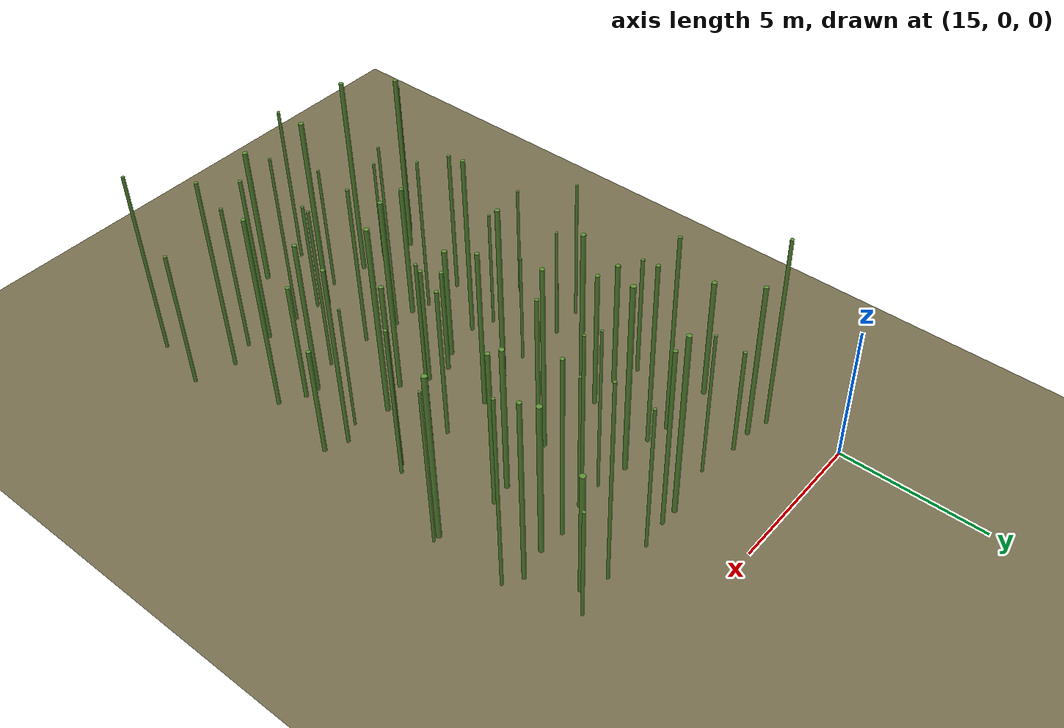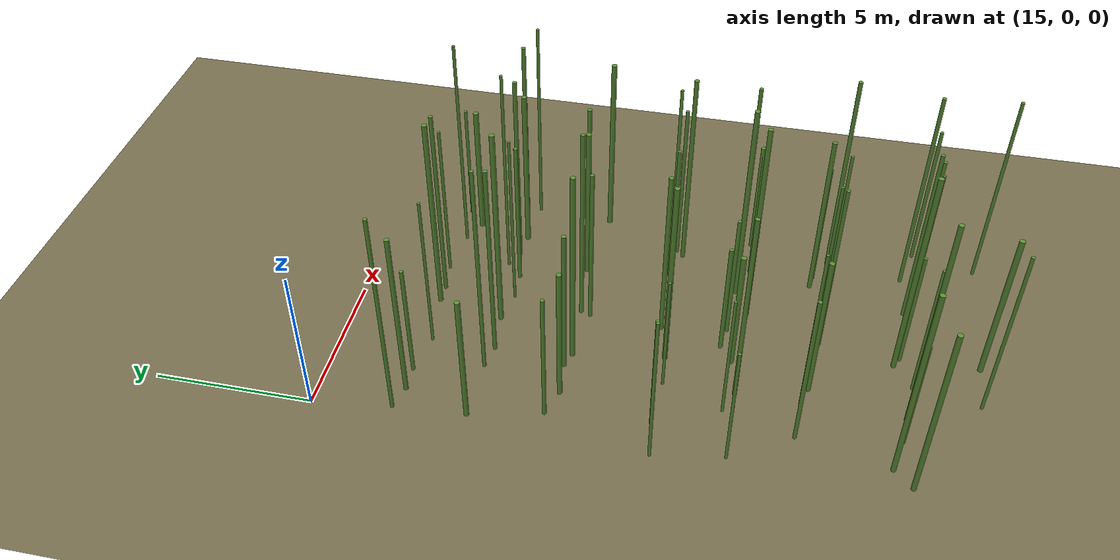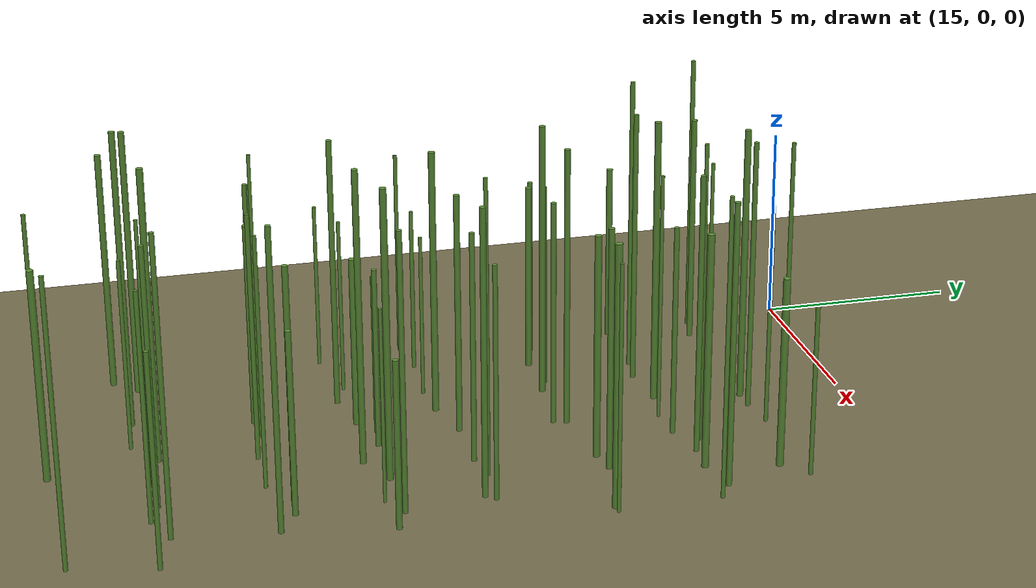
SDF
<sdf version="1.9">
 <world name="bamboo_field">
  <model name="ground_plane">
   <static>true</static>
   <link name="link">
    <collision name="collision">
     <geometry><plane><normal>0 0 1</normal><size>80.0 80.0</size></plane></geometry>
    </collision>
    <visual name="visual">
     <geometry><plane><normal>0 0 1</normal><size>80.0 80.0</size></plane></geometry>
     <material><diffuse>0.45 0.42 0.30 1</diffuse></material>
    </visual>
   </link>
  </model>
  <model name="bamboo_526">
   <static>true</static>
   <pose>18.860159477782666 -19.832655943592947 3.0462922151851615 0 0 0</pose>
   <link name="link">
    <collision name="collision">
     <geometry>
      <cylinder><radius>0.053149695780686596</radius><length>6.092584430370323</length></cylinder>
     </geometry>
    </collision>
    <visual name="visual">
     <geometry>
      <cylinder><radius>0.053149695780686596</radius><length>6.092584430370323</length></cylinder>
     </geometry>
     <material><diffuse>0.35 0.55 0.20 1</diffuse><specular>0.1 0.1 0.1 1</specular></material>
    </visual>
   </link>
  </model>
  <model name="bamboo_527">
   <static>true</static>
   <pose>20.437587209882793 -19.854918476039686 2.661207232393403 0 0 0</pose>
   <link name="link">
    <collision name="collision">
     <geometry>
      <cylinder><radius>0.08665621723259387</radius><length>5.322414464786806</length></cylinder>
     </geometry>
    </collision>
    <visual name="visual">
     <geometry>
      <cylinder><radius>0.08665621723259387</radius><length>5.322414464786806</length></cylinder>
     </geometry>
     <material><diffuse>0.35 0.55 0.20 1</diffuse><specular>0.1 0.1 0.1 1</specular></material>
    </visual>
   </link>
  </model>
  <model name="bamboo_530">
   <static>true</static>
   <pose>24.94281143981483 -19.79431886537646 3.4770803915843524 0 0 0</pose>
   <link name="link">
    <collision name="collision">
     <geometry>
      <cylinder><radius>0.05563535534813821</radius><length>6.954160783168705</length></cylinder>
     </geometry>
    </collision>
    <visual name="visual">
     <geometry>
      <cylinder><radius>0.05563535534813821</radius><length>6.954160783168705</length></cylinder>
     </geometry>
     <material><diffuse>0.35 0.55 0.20 1</diffuse><specular>0.1 0.1 0.1 1</specular></material>
    </visual>
   </link>
  </model>
  <model name="bamboo_585">
   <static>true</static>
   <pose>15.387754911077337 -17.80817874945378 3.091448937281645 0 0 0</pose>
   <link name="link">
    <collision name="collision">
     <geometry>
      <cylinder><radius>0.07987423064167329</radius><length>6.18289787456329</length></cylinder>
     </geometry>
    </collision>
    <visual name="visual">
     <geometry>
      <cylinder><radius>0.07987423064167329</radius><length>6.18289787456329</length></cylinder>
     </geometry>
     <material><diffuse>0.35 0.55 0.20 1</diffuse><specular>0.1 0.1 0.1 1</specular></material>
    </visual>
   </link>
  </model>
  <model name="bamboo_586">
   <static>true</static>
   <pose>15.947767904153284 -17.24440605320336 3.4586491532316894 0 0 0</pose>
   <link name="link">
    <collision name="collision">
     <geometry>
      <cylinder><radius>0.07975085611162297</radius><length>6.917298306463379</length></cylinder>
     </geometry>
    </collision>
    <visual name="visual">
     <geometry>
      <cylinder><radius>0.07975085611162297</radius><length>6.917298306463379</length></cylinder>
     </geometry>
     <material><diffuse>0.35 0.55 0.20 1</diffuse><specular>0.1 0.1 0.1 1</specular></material>
    </visual>
   </link>
  </model>
  <model name="bamboo_587">
   <static>true</static>
   <pose>17.0256446400461 -17.533025191686598 2.0100596781480102 0 0 0</pose>
   <link name="link">
    <collision name="collision">
     <geometry>
      <cylinder><radius>0.04616175794667495</radius><length>4.0201193562960205</length></cylinder>
     </geometry>
    </collision>
    <visual name="visual">
     <geometry>
      <cylinder><radius>0.04616175794667495</radius><length>4.0201193562960205</length></cylinder>
     </geometry>
     <material><diffuse>0.35 0.55 0.20 1</diffuse><specular>0.1 0.1 0.1 1</specular></material>
    </visual>
   </link>
  </model>
  <model name="bamboo_588">
   <static>true</static>
   <pose>17.927474129414367 -17.620173478456348 3.807092751949092 0 0 0</pose>
   <link name="link">
    <collision name="collision">
     <geometry>
      <cylinder><radius>0.07741482933663968</radius><length>7.614185503898184</length></cylinder>
     </geometry>
    </collision>
    <visual name="visual">
     <geometry>
      <cylinder><radius>0.07741482933663968</radius><length>7.614185503898184</length></cylinder>
     </geometry>
     <material><diffuse>0.35 0.55 0.20 1</diffuse><specular>0.1 0.1 0.1 1</specular></material>
    </visual>
   </link>
  </model>
  <model name="bamboo_589">
   <static>true</static>
   <pose>19.229474432751996 -17.773003274932293 2.441575938714816 0 0 0</pose>
   <link name="link">
    <collision name="collision">
     <geometry>
      <cylinder><radius>0.04804771787821975</radius><length>4.883151877429632</length></cylinder>
     </geometry>
    </collision>
    <visual name="visual">
     <geometry>
      <cylinder><radius>0.04804771787821975</radius><length>4.883151877429632</length></cylinder>
     </geometry>
     <material><diffuse>0.35 0.55 0.20 1</diffuse><specular>0.1 0.1 0.1 1</specular></material>
    </visual>
   </link>
  </model>
  <model name="bamboo_590">
   <static>true</static>
   <pose>20.070352675636016 -17.213012490376915 3.7027754448509484 0 0 0</pose>
   <link name="link">
    <collision name="collision">
     <geometry>
      <cylinder><radius>0.08261255638837378</radius><length>7.405550889701897</length></cylinder>
     </geometry>
    </collision>
    <visual name="visual">
     <geometry>
      <cylinder><radius>0.08261255638837378</radius><length>7.405550889701897</length></cylinder>
     </geometry>
     <material><diffuse>0.35 0.55 0.20 1</diffuse><specular>0.1 0.1 0.1 1</specular></material>
    </visual>
   </link>
  </model>
  <model name="bamboo_591">
   <static>true</static>
   <pose>20.37094153229591 -17.40111914554082 2.1347255148096025 0 0 0</pose>
   <link name="link">
    <collision name="collision">
     <geometry>
      <cylinder><radius>0.054532633376004266</radius><length>4.269451029619205</length></cylinder>
     </geometry>
    </collision>
    <visual name="visual">
     <geometry>
      <cylinder><radius>0.054532633376004266</radius><length>4.269451029619205</length></cylinder>
     </geometry>
     <material><diffuse>0.35 0.55 0.20 1</diffuse><specular>0.1 0.1 0.1 1</specular></material>
    </visual>
   </link>
  </model>
  <model name="bamboo_592">
   <static>true</static>
   <pose>21.267107555475945 -17.475370581666688 3.310945961393905 0 0 0</pose>
   <link name="link">
    <collision name="collision">
     <geometry>
      <cylinder><radius>0.046410757329797575</radius><length>6.62189192278781</length></cylinder>
     </geometry>
    </collision>
    <visual name="visual">
     <geometry>
      <cylinder><radius>0.046410757329797575</radius><length>6.62189192278781</length></cylinder>
     </geometry>
     <material><diffuse>0.35 0.55 0.20 1</diffuse><specular>0.1 0.1 0.1 1</specular></material>
    </visual>
   </link>
  </model>
  <model name="bamboo_593">
   <static>true</static>
   <pose>22.47109629430502 -17.50011267268308 3.2326848605189062 0 0 0</pose>
   <link name="link">
    <collision name="collision">
     <geometry>
      <cylinder><radius>0.06253229891074674</radius><length>6.4653697210378125</length></cylinder>
     </geometry>
    </collision>
    <visual name="visual">
     <geometry>
      <cylinder><radius>0.06253229891074674</radius><length>6.4653697210378125</length></cylinder>
     </geometry>
     <material><diffuse>0.35 0.55 0.20 1</diffuse><specular>0.1 0.1 0.1 1</specular></material>
    </visual>
   </link>
  </model>
  <model name="bamboo_594">
   <static>true</static>
   <pose>23.186726572747627 -17.736709028692882 2.856614785919182 0 0 0</pose>
   <link name="link">
    <collision name="collision">
     <geometry>
      <cylinder><radius>0.055816657974816455</radius><length>5.713229571838364</length></cylinder>
     </geometry>
    </collision>
    <visual name="visual">
     <geometry>
      <cylinder><radius>0.055816657974816455</radius><length>5.713229571838364</length></cylinder>
     </geometry>
     <material><diffuse>0.35 0.55 0.20 1</diffuse><specular>0.1 0.1 0.1 1</specular></material>
    </visual>
   </link>
  </model>
  <model name="bamboo_595">
   <static>true</static>
   <pose>24.06596861923299 -17.39595066864873 3.6802201175613103 0 0 0</pose>
   <link name="link">
    <collision name="collision">
     <geometry>
      <cylinder><radius>0.06180620330448442</radius><length>7.360440235122621</length></cylinder>
     </geometry>
    </collision>
    <visual name="visual">
     <geometry>
      <cylinder><radius>0.06180620330448442</radius><length>7.360440235122621</length></cylinder>
     </geometry>
     <material><diffuse>0.35 0.55 0.20 1</diffuse><specular>0.1 0.1 0.1 1</specular></material>
    </visual>
   </link>
  </model>
  <model name="bamboo_596">
   <static>true</static>
   <pose>25.40927914668029 -17.78599251304806 2.6109435928906706 0 0 0</pose>
   <link name="link">
    <collision name="collision">
     <geometry>
      <cylinder><radius>0.057937080105679835</radius><length>5.221887185781341</length></cylinder>
     </geometry>
    </collision>
    <visual name="visual">
     <geometry>
      <cylinder><radius>0.057937080105679835</radius><length>5.221887185781341</length></cylinder>
     </geometry>
     <material><diffuse>0.35 0.55 0.20 1</diffuse><specular>0.1 0.1 0.1 1</specular></material>
    </visual>
   </link>
  </model>
  <model name="bamboo_654">
   <static>true</static>
   <pose>16.57686163514403 -14.397149602017205 2.7617667644629362 0 0 0</pose>
   <link name="link">
    <collision name="collision">
     <geometry>
      <cylinder><radius>0.06161093758654174</radius><length>5.5235335289258725</length></cylinder>
     </geometry>
    </collision>
    <visual name="visual">
     <geometry>
      <cylinder><radius>0.06161093758654174</radius><length>5.5235335289258725</length></cylinder>
     </geometry>
     <material><diffuse>0.35 0.55 0.20 1</diffuse><specular>0.1 0.1 0.1 1</specular></material>
    </visual>
   </link>
  </model>
  <model name="bamboo_655">
   <static>true</static>
   <pose>17.931483482523667 -14.473980205762212 2.999195652223701 0 0 0</pose>
   <link name="link">
    <collision name="collision">
     <geometry>
      <cylinder><radius>0.048830363832980644</radius><length>5.998391304447402</length></cylinder>
     </geometry>
    </collision>
    <visual name="visual">
     <geometry>
      <cylinder><radius>0.048830363832980644</radius><length>5.998391304447402</length></cylinder>
     </geometry>
     <material><diffuse>0.35 0.55 0.20 1</diffuse><specular>0.1 0.1 0.1 1</specular></material>
    </visual>
   </link>
  </model>
  <model name="bamboo_656">
   <static>true</static>
   <pose>18.534889949732346 -14.671068983096156 2.6000683643068974 0 0 0</pose>
   <link name="link">
    <collision name="collision">
     <geometry>
      <cylinder><radius>0.07926664683469392</radius><length>5.200136728613795</length></cylinder>
     </geometry>
    </collision>
    <visual name="visual">
     <geometry>
      <cylinder><radius>0.07926664683469392</radius><length>5.200136728613795</length></cylinder>
     </geometry>
     <material><diffuse>0.35 0.55 0.20 1</diffuse><specular>0.1 0.1 0.1 1</specular></material>
    </visual>
   </link>
  </model>
  <model name="bamboo_657">
   <static>true</static>
   <pose>19.334331391073974 -14.627649597886366 3.627636138413693 0 0 0</pose>
   <link name="link">
    <collision name="collision">
     <geometry>
      <cylinder><radius>0.04300181888620083</radius><length>7.255272276827386</length></cylinder>
     </geometry>
    </collision>
    <visual name="visual">
     <geometry>
      <cylinder><radius>0.04300181888620083</radius><length>7.255272276827386</length></cylinder>
     </geometry>
     <material><diffuse>0.35 0.55 0.20 1</diffuse><specular>0.1 0.1 0.1 1</specular></material>
    </visual>
   </link>
  </model>
  <model name="bamboo_658">
   <static>true</static>
   <pose>20.532986924697433 -14.888152768723181 3.120700069628529 0 0 0</pose>
   <link name="link">
    <collision name="collision">
     <geometry>
      <cylinder><radius>0.058048101052756075</radius><length>6.241400139257058</length></cylinder>
     </geometry>
    </collision>
    <visual name="visual">
     <geometry>
      <cylinder><radius>0.058048101052756075</radius><length>6.241400139257058</length></cylinder>
     </geometry>
     <material><diffuse>0.35 0.55 0.20 1</diffuse><specular>0.1 0.1 0.1 1</specular></material>
    </visual>
   </link>
  </model>
  <model name="bamboo_659">
   <static>true</static>
   <pose>22.08996895501786 -14.946375961529252 3.1517889149466973 0 0 0</pose>
   <link name="link">
    <collision name="collision">
     <geometry>
      <cylinder><radius>0.04994790553184366</radius><length>6.303577829893395</length></cylinder>
     </geometry>
    </collision>
    <visual name="visual">
     <geometry>
      <cylinder><radius>0.04994790553184366</radius><length>6.303577829893395</length></cylinder>
     </geometry>
     <material><diffuse>0.35 0.55 0.20 1</diffuse><specular>0.1 0.1 0.1 1</specular></material>
    </visual>
   </link>
  </model>
  <model name="bamboo_660">
   <static>true</static>
   <pose>23.16326924326136 -14.44581043214312 2.9749874886087233 0 0 0</pose>
   <link name="link">
    <collision name="collision">
     <geometry>
      <cylinder><radius>0.0736596420073675</radius><length>5.949974977217447</length></cylinder>
     </geometry>
    </collision>
    <visual name="visual">
     <geometry>
      <cylinder><radius>0.0736596420073675</radius><length>5.949974977217447</length></cylinder>
     </geometry>
     <material><diffuse>0.35 0.55 0.20 1</diffuse><specular>0.1 0.1 0.1 1</specular></material>
    </visual>
   </link>
  </model>
  <model name="bamboo_661">
   <static>true</static>
   <pose>23.617432202129365 -14.503151145769925 2.289696676556135 0 0 0</pose>
   <link name="link">
    <collision name="collision">
     <geometry>
      <cylinder><radius>0.07158560952417345</radius><length>4.57939335311227</length></cylinder>
     </geometry>
    </collision>
    <visual name="visual">
     <geometry>
      <cylinder><radius>0.07158560952417345</radius><length>4.57939335311227</length></cylinder>
     </geometry>
     <material><diffuse>0.35 0.55 0.20 1</diffuse><specular>0.1 0.1 0.1 1</specular></material>
    </visual>
   </link>
  </model>
  <model name="bamboo_662">
   <static>true</static>
   <pose>24.385025506016152 -14.955153504276984 3.6978015438776173 0 0 0</pose>
   <link name="link">
    <collision name="collision">
     <geometry>
      <cylinder><radius>0.06858187869368967</radius><length>7.395603087755235</length></cylinder>
     </geometry>
    </collision>
    <visual name="visual">
     <geometry>
      <cylinder><radius>0.06858187869368967</radius><length>7.395603087755235</length></cylinder>
     </geometry>
     <material><diffuse>0.35 0.55 0.20 1</diffuse><specular>0.1 0.1 0.1 1</specular></material>
    </visual>
   </link>
  </model>
  <model name="bamboo_719">
   <static>true</static>
   <pose>15.415099893849032 -12.508472718244585 2.165090225277165 0 0 0</pose>
   <link name="link">
    <collision name="collision">
     <geometry>
      <cylinder><radius>0.046609452268543905</radius><length>4.33018045055433</length></cylinder>
     </geometry>
    </collision>
    <visual name="visual">
     <geometry>
      <cylinder><radius>0.046609452268543905</radius><length>4.33018045055433</length></cylinder>
     </geometry>
     <material><diffuse>0.35 0.55 0.20 1</diffuse><specular>0.1 0.1 0.1 1</specular></material>
    </visual>
   </link>
  </model>
  <model name="bamboo_720">
   <static>true</static>
   <pose>17.167004570672166 -12.201487717030615 2.26974152745191 0 0 0</pose>
   <link name="link">
    <collision name="collision">
     <geometry>
      <cylinder><radius>0.046518758744758706</radius><length>4.53948305490382</length></cylinder>
     </geometry>
    </collision>
    <visual name="visual">
     <geometry>
      <cylinder><radius>0.046518758744758706</radius><length>4.53948305490382</length></cylinder>
     </geometry>
     <material><diffuse>0.35 0.55 0.20 1</diffuse><specular>0.1 0.1 0.1 1</specular></material>
    </visual>
   </link>
  </model>
  <model name="bamboo_721">
   <static>true</static>
   <pose>17.908768710499334 -12.492839700654887 3.471335508290645 0 0 0</pose>
   <link name="link">
    <collision name="collision">
     <geometry>
      <cylinder><radius>0.07079984187971008</radius><length>6.94267101658129</length></cylinder>
     </geometry>
    </collision>
    <visual name="visual">
     <geometry>
      <cylinder><radius>0.07079984187971008</radius><length>6.94267101658129</length></cylinder>
     </geometry>
     <material><diffuse>0.35 0.55 0.20 1</diffuse><specular>0.1 0.1 0.1 1</specular></material>
    </visual>
   </link>
  </model>
  <model name="bamboo_722">
   <static>true</static>
   <pose>19.217328669075844 -12.246512065237699 2.1791892962534707 0 0 0</pose>
   <link name="link">
    <collision name="collision">
     <geometry>
      <cylinder><radius>0.08620690404475415</radius><length>4.358378592506941</length></cylinder>
     </geometry>
    </collision>
    <visual name="visual">
     <geometry>
      <cylinder><radius>0.08620690404475415</radius><length>4.358378592506941</length></cylinder>
     </geometry>
     <material><diffuse>0.35 0.55 0.20 1</diffuse><specular>0.1 0.1 0.1 1</specular></material>
    </visual>
   </link>
  </model>
  <model name="bamboo_723">
   <static>true</static>
   <pose>19.799801717682115 -11.851634145019037 2.048413660670538 0 0 0</pose>
   <link name="link">
    <collision name="collision">
     <geometry>
      <cylinder><radius>0.06969385745205352</radius><length>4.096827321341076</length></cylinder>
     </geometry>
    </collision>
    <visual name="visual">
     <geometry>
      <cylinder><radius>0.06969385745205352</radius><length>4.096827321341076</length></cylinder>
     </geometry>
     <material><diffuse>0.35 0.55 0.20 1</diffuse><specular>0.1 0.1 0.1 1</specular></material>
    </visual>
   </link>
  </model>
  <model name="bamboo_724">
   <static>true</static>
   <pose>20.564331207833405 -11.970270142801377 2.291636950380555 0 0 0</pose>
   <link name="link">
    <collision name="collision">
     <geometry>
      <cylinder><radius>0.06211050526171258</radius><length>4.58327390076111</length></cylinder>
     </geometry>
    </collision>
    <visual name="visual">
     <geometry>
      <cylinder><radius>0.06211050526171258</radius><length>4.58327390076111</length></cylinder>
     </geometry>
     <material><diffuse>0.35 0.55 0.20 1</diffuse><specular>0.1 0.1 0.1 1</specular></material>
    </visual>
   </link>
  </model>
  <model name="bamboo_725">
   <static>true</static>
   <pose>21.39145122617332 -12.50481387754042 3.7055282903584006 0 0 0</pose>
   <link name="link">
    <collision name="collision">
     <geometry>
      <cylinder><radius>0.0778866891296531</radius><length>7.411056580716801</length></cylinder>
     </geometry>
    </collision>
    <visual name="visual">
     <geometry>
      <cylinder><radius>0.0778866891296531</radius><length>7.411056580716801</length></cylinder>
     </geometry>
     <material><diffuse>0.35 0.55 0.20 1</diffuse><specular>0.1 0.1 0.1 1</specular></material>
    </visual>
   </link>
  </model>
  <model name="bamboo_726">
   <static>true</static>
   <pose>22.40198067851946 -12.057333829354365 3.6402679128599926 0 0 0</pose>
   <link name="link">
    <collision name="collision">
     <geometry>
      <cylinder><radius>0.08343761758224842</radius><length>7.280535825719985</length></cylinder>
     </geometry>
    </collision>
    <visual name="visual">
     <geometry>
      <cylinder><radius>0.08343761758224842</radius><length>7.280535825719985</length></cylinder>
     </geometry>
     <material><diffuse>0.35 0.55 0.20 1</diffuse><specular>0.1 0.1 0.1 1</specular></material>
    </visual>
   </link>
  </model>
  <model name="bamboo_727">
   <static>true</static>
   <pose>23.51348239109554 -12.400329539880024 2.4180190822484042 0 0 0</pose>
   <link name="link">
    <collision name="collision">
     <geometry>
      <cylinder><radius>0.0411374057575601</radius><length>4.8360381644968085</length></cylinder>
     </geometry>
    </collision>
    <visual name="visual">
     <geometry>
      <cylinder><radius>0.0411374057575601</radius><length>4.8360381644968085</length></cylinder>
     </geometry>
     <material><diffuse>0.35 0.55 0.20 1</diffuse><specular>0.1 0.1 0.1 1</specular></material>
    </visual>
   </link>
  </model>
  <model name="bamboo_728">
   <static>true</static>
   <pose>24.14512811779402 -12.05386182448787 3.4598471670195776 0 0 0</pose>
   <link name="link">
    <collision name="collision">
     <geometry>
      <cylinder><radius>0.06415131651723459</radius><length>6.919694334039155</length></cylinder>
     </geometry>
    </collision>
    <visual name="visual">
     <geometry>
      <cylinder><radius>0.06415131651723459</radius><length>6.919694334039155</length></cylinder>
     </geometry>
     <material><diffuse>0.35 0.55 0.20 1</diffuse><specular>0.1 0.1 0.1 1</specular></material>
    </visual>
   </link>
  </model>
  <model name="bamboo_729">
   <static>true</static>
   <pose>24.872764081101117 -12.344181008160053 2.0869640149989177 0 0 0</pose>
   <link name="link">
    <collision name="collision">
     <geometry>
      <cylinder><radius>0.07317641709998216</radius><length>4.173928029997835</length></cylinder>
     </geometry>
    </collision>
    <visual name="visual">
     <geometry>
      <cylinder><radius>0.07317641709998216</radius><length>4.173928029997835</length></cylinder>
     </geometry>
     <material><diffuse>0.35 0.55 0.20 1</diffuse><specular>0.1 0.1 0.1 1</specular></material>
    </visual>
   </link>
  </model>
  <model name="bamboo_793">
   <static>true</static>
   <pose>15.059046965163295 -10.317700652262252 2.7006362758482343 0 0 0</pose>
   <link name="link">
    <collision name="collision">
     <geometry>
      <cylinder><radius>0.05032886897866752</radius><length>5.401272551696469</length></cylinder>
     </geometry>
    </collision>
    <visual name="visual">
     <geometry>
      <cylinder><radius>0.05032886897866752</radius><length>5.401272551696469</length></cylinder>
     </geometry>
     <material><diffuse>0.35 0.55 0.20 1</diffuse><specular>0.1 0.1 0.1 1</specular></material>
    </visual>
   </link>
  </model>
  <model name="bamboo_794">
   <static>true</static>
   <pose>16.247133023783174 -10.179673207645477 2.1424857424404853 0 0 0</pose>
   <link name="link">
    <collision name="collision">
     <geometry>
      <cylinder><radius>0.05224125369313172</radius><length>4.284971484880971</length></cylinder>
     </geometry>
    </collision>
    <visual name="visual">
     <geometry>
      <cylinder><radius>0.05224125369313172</radius><length>4.284971484880971</length></cylinder>
     </geometry>
     <material><diffuse>0.35 0.55 0.20 1</diffuse><specular>0.1 0.1 0.1 1</specular></material>
    </visual>
   </link>
  </model>
  <model name="bamboo_795">
   <static>true</static>
   <pose>17.882128313908925 -10.29150233714117 2.107599751444453 0 0 0</pose>
   <link name="link">
    <collision name="collision">
     <geometry>
      <cylinder><radius>0.045296345943063365</radius><length>4.215199502888906</length></cylinder>
     </geometry>
    </collision>
    <visual name="visual">
     <geometry>
      <cylinder><radius>0.045296345943063365</radius><length>4.215199502888906</length></cylinder>
     </geometry>
     <material><diffuse>0.35 0.55 0.20 1</diffuse><specular>0.1 0.1 0.1 1</specular></material>
    </visual>
   </link>
  </model>
  <model name="bamboo_796">
   <static>true</static>
   <pose>18.95347157365406 -10.198081976610569 3.398730999914352 0 0 0</pose>
   <link name="link">
    <collision name="collision">
     <geometry>
      <cylinder><radius>0.08180872019012454</radius><length>6.797461999828704</length></cylinder>
     </geometry>
    </collision>
    <visual name="visual">
     <geometry>
      <cylinder><radius>0.08180872019012454</radius><length>6.797461999828704</length></cylinder>
     </geometry>
     <material><diffuse>0.35 0.55 0.20 1</diffuse><specular>0.1 0.1 0.1 1</specular></material>
    </visual>
   </link>
  </model>
  <model name="bamboo_797">
   <static>true</static>
   <pose>20.2306049511187 -9.887770377516391 3.0669698577902555 0 0 0</pose>
   <link name="link">
    <collision name="collision">
     <geometry>
      <cylinder><radius>0.0735435132716968</radius><length>6.133939715580511</length></cylinder>
     </geometry>
    </collision>
    <visual name="visual">
     <geometry>
      <cylinder><radius>0.0735435132716968</radius><length>6.133939715580511</length></cylinder>
     </geometry>
     <material><diffuse>0.35 0.55 0.20 1</diffuse><specular>0.1 0.1 0.1 1</specular></material>
    </visual>
   </link>
  </model>
  <model name="bamboo_798">
   <static>true</static>
   <pose>21.93958076356279 -9.919639300961096 2.9111683414934824 0 0 0</pose>
   <link name="link">
    <collision name="collision">
     <geometry>
      <cylinder><radius>0.06341379526900612</radius><length>5.822336682986965</length></cylinder>
     </geometry>
    </collision>
    <visual name="visual">
     <geometry>
      <cylinder><radius>0.06341379526900612</radius><length>5.822336682986965</length></cylinder>
     </geometry>
     <material><diffuse>0.35 0.55 0.20 1</diffuse><specular>0.1 0.1 0.1 1</specular></material>
    </visual>
   </link>
  </model>
  <model name="bamboo_799">
   <static>true</static>
   <pose>22.778464267966637 -9.777787304942589 3.7221925541117917 0 0 0</pose>
   <link name="link">
    <collision name="collision">
     <geometry>
      <cylinder><radius>0.05118972269584301</radius><length>7.4443851082235835</length></cylinder>
     </geometry>
    </collision>
    <visual name="visual">
     <geometry>
      <cylinder><radius>0.05118972269584301</radius><length>7.4443851082235835</length></cylinder>
     </geometry>
     <material><diffuse>0.35 0.55 0.20 1</diffuse><specular>0.1 0.1 0.1 1</specular></material>
    </visual>
   </link>
  </model>
  <model name="bamboo_800">
   <static>true</static>
   <pose>23.821118297395873 -10.09949228502659 3.577557412695759 0 0 0</pose>
   <link name="link">
    <collision name="collision">
     <geometry>
      <cylinder><radius>0.07325903092709479</radius><length>7.155114825391518</length></cylinder>
     </geometry>
    </collision>
    <visual name="visual">
     <geometry>
      <cylinder><radius>0.07325903092709479</radius><length>7.155114825391518</length></cylinder>
     </geometry>
     <material><diffuse>0.35 0.55 0.20 1</diffuse><specular>0.1 0.1 0.1 1</specular></material>
    </visual>
   </link>
  </model>
  <model name="bamboo_801">
   <static>true</static>
   <pose>24.035102308482646 -9.879231372080902 2.922483367409799 0 0 0</pose>
   <link name="link">
    <collision name="collision">
     <geometry>
      <cylinder><radius>0.057572041034196345</radius><length>5.844966734819598</length></cylinder>
     </geometry>
    </collision>
    <visual name="visual">
     <geometry>
      <cylinder><radius>0.057572041034196345</radius><length>5.844966734819598</length></cylinder>
     </geometry>
     <material><diffuse>0.35 0.55 0.20 1</diffuse><specular>0.1 0.1 0.1 1</specular></material>
    </visual>
   </link>
  </model>
  <model name="bamboo_861">
   <static>true</static>
   <pose>15.984595429699597 -7.002292352258125 2.341378775765779 0 0 0</pose>
   <link name="link">
    <collision name="collision">
     <geometry>
      <cylinder><radius>0.06280922964633476</radius><length>4.682757551531558</length></cylinder>
     </geometry>
    </collision>
    <visual name="visual">
     <geometry>
      <cylinder><radius>0.06280922964633476</radius><length>4.682757551531558</length></cylinder>
     </geometry>
     <material><diffuse>0.35 0.55 0.20 1</diffuse><specular>0.1 0.1 0.1 1</specular></material>
    </visual>
   </link>
  </model>
  <model name="bamboo_862">
   <static>true</static>
   <pose>16.876515638949083 -7.276404451936113 2.441145048485847 0 0 0</pose>
   <link name="link">
    <collision name="collision">
     <geometry>
      <cylinder><radius>0.07995876111672391</radius><length>4.882290096971694</length></cylinder>
     </geometry>
    </collision>
    <visual name="visual">
     <geometry>
      <cylinder><radius>0.07995876111672391</radius><length>4.882290096971694</length></cylinder>
     </geometry>
     <material><diffuse>0.35 0.55 0.20 1</diffuse><specular>0.1 0.1 0.1 1</specular></material>
    </visual>
   </link>
  </model>
  <model name="bamboo_863">
   <static>true</static>
   <pose>18.021103867795958 -7.171575569376134 2.6484698820233707 0 0 0</pose>
   <link name="link">
    <collision name="collision">
     <geometry>
      <cylinder><radius>0.07391989186480963</radius><length>5.2969397640467415</length></cylinder>
     </geometry>
    </collision>
    <visual name="visual">
     <geometry>
      <cylinder><radius>0.07391989186480963</radius><length>5.2969397640467415</length></cylinder>
     </geometry>
     <material><diffuse>0.35 0.55 0.20 1</diffuse><specular>0.1 0.1 0.1 1</specular></material>
    </visual>
   </link>
  </model>
  <model name="bamboo_864">
   <static>true</static>
   <pose>18.50809801711718 -7.339899867324792 3.5284557647345443 0 0 0</pose>
   <link name="link">
    <collision name="collision">
     <geometry>
      <cylinder><radius>0.0796550834973275</radius><length>7.0569115294690885</length></cylinder>
     </geometry>
    </collision>
    <visual name="visual">
     <geometry>
      <cylinder><radius>0.0796550834973275</radius><length>7.0569115294690885</length></cylinder>
     </geometry>
     <material><diffuse>0.35 0.55 0.20 1</diffuse><specular>0.1 0.1 0.1 1</specular></material>
    </visual>
   </link>
  </model>
  <model name="bamboo_865">
   <static>true</static>
   <pose>20.355271136921104 -7.546263250639519 2.8773224241084545 0 0 0</pose>
   <link name="link">
    <collision name="collision">
     <geometry>
      <cylinder><radius>0.06767038649507094</radius><length>5.754644848216909</length></cylinder>
     </geometry>
    </collision>
    <visual name="visual">
     <geometry>
      <cylinder><radius>0.06767038649507094</radius><length>5.754644848216909</length></cylinder>
     </geometry>
     <material><diffuse>0.35 0.55 0.20 1</diffuse><specular>0.1 0.1 0.1 1</specular></material>
    </visual>
   </link>
  </model>
  <model name="bamboo_866">
   <static>true</static>
   <pose>20.4582266341619 -7.233875244316343 3.555323275294209 0 0 0</pose>
   <link name="link">
    <collision name="collision">
     <geometry>
      <cylinder><radius>0.07062207526569479</radius><length>7.110646550588418</length></cylinder>
     </geometry>
    </collision>
    <visual name="visual">
     <geometry>
      <cylinder><radius>0.07062207526569479</radius><length>7.110646550588418</length></cylinder>
     </geometry>
     <material><diffuse>0.35 0.55 0.20 1</diffuse><specular>0.1 0.1 0.1 1</specular></material>
    </visual>
   </link>
  </model>
  <model name="bamboo_867">
   <static>true</static>
   <pose>22.45066999547715 -7.033958580724013 2.832444484435074 0 0 0</pose>
   <link name="link">
    <collision name="collision">
     <geometry>
      <cylinder><radius>0.08434575709839595</radius><length>5.664888968870148</length></cylinder>
     </geometry>
    </collision>
    <visual name="visual">
     <geometry>
      <cylinder><radius>0.08434575709839595</radius><length>5.664888968870148</length></cylinder>
     </geometry>
     <material><diffuse>0.35 0.55 0.20 1</diffuse><specular>0.1 0.1 0.1 1</specular></material>
    </visual>
   </link>
  </model>
  <model name="bamboo_868">
   <static>true</static>
   <pose>23.150846992689218 -6.918089749380247 3.046173728263663 0 0 0</pose>
   <link name="link">
    <collision name="collision">
     <geometry>
      <cylinder><radius>0.07199128518661474</radius><length>6.092347456527326</length></cylinder>
     </geometry>
    </collision>
    <visual name="visual">
     <geometry>
      <cylinder><radius>0.07199128518661474</radius><length>6.092347456527326</length></cylinder>
     </geometry>
     <material><diffuse>0.35 0.55 0.20 1</diffuse><specular>0.1 0.1 0.1 1</specular></material>
    </visual>
   </link>
  </model>
  <model name="bamboo_869">
   <static>true</static>
   <pose>25.126448569009384 -7.331254979900571 3.2543833080900253 0 0 0</pose>
   <link name="link">
    <collision name="collision">
     <geometry>
      <cylinder><radius>0.08751490320564105</radius><length>6.508766616180051</length></cylinder>
     </geometry>
    </collision>
    <visual name="visual">
     <geometry>
      <cylinder><radius>0.08751490320564105</radius><length>6.508766616180051</length></cylinder>
     </geometry>
     <material><diffuse>0.35 0.55 0.20 1</diffuse><specular>0.1 0.1 0.1 1</specular></material>
    </visual>
   </link>
  </model>
  <model name="bamboo_870">
   <static>true</static>
   <pose>25.347447162768095 -7.321421563477656 3.060398041856162 0 0 0</pose>
   <link name="link">
    <collision name="collision">
     <geometry>
      <cylinder><radius>0.0458753911355896</radius><length>6.120796083712324</length></cylinder>
     </geometry>
    </collision>
    <visual name="visual">
     <geometry>
      <cylinder><radius>0.0458753911355896</radius><length>6.120796083712324</length></cylinder>
     </geometry>
     <material><diffuse>0.35 0.55 0.20 1</diffuse><specular>0.1 0.1 0.1 1</specular></material>
    </visual>
   </link>
  </model>
  <model name="bamboo_926">
   <static>true</static>
   <pose>15.462833128342238 -4.728926747270662 2.3256944653638376 0 0 0</pose>
   <link name="link">
    <collision name="collision">
     <geometry>
      <cylinder><radius>0.0822640034033124</radius><length>4.651388930727675</length></cylinder>
     </geometry>
    </collision>
    <visual name="visual">
     <geometry>
      <cylinder><radius>0.0822640034033124</radius><length>4.651388930727675</length></cylinder>
     </geometry>
     <material><diffuse>0.35 0.55 0.20 1</diffuse><specular>0.1 0.1 0.1 1</specular></material>
    </visual>
   </link>
  </model>
  <model name="bamboo_927">
   <static>true</static>
   <pose>17.4877153252028 -4.749804186937692 3.824209242390936 0 0 0</pose>
   <link name="link">
    <collision name="collision">
     <geometry>
      <cylinder><radius>0.06097570025781063</radius><length>7.648418484781872</length></cylinder>
     </geometry>
    </collision>
    <visual name="visual">
     <geometry>
      <cylinder><radius>0.06097570025781063</radius><length>7.648418484781872</length></cylinder>
     </geometry>
     <material><diffuse>0.35 0.55 0.20 1</diffuse><specular>0.1 0.1 0.1 1</specular></material>
    </visual>
   </link>
  </model>
  <model name="bamboo_928">
   <static>true</static>
   <pose>18.278644479187292 -4.886547468607839 3.532884875357597 0 0 0</pose>
   <link name="link">
    <collision name="collision">
     <geometry>
      <cylinder><radius>0.06569332465299026</radius><length>7.065769750715194</length></cylinder>
     </geometry>
    </collision>
    <visual name="visual">
     <geometry>
      <cylinder><radius>0.06569332465299026</radius><length>7.065769750715194</length></cylinder>
     </geometry>
     <material><diffuse>0.35 0.55 0.20 1</diffuse><specular>0.1 0.1 0.1 1</specular></material>
    </visual>
   </link>
  </model>
  <model name="bamboo_929">
   <static>true</static>
   <pose>19.630899639485385 -4.741952909006238 3.6536439932136964 0 0 0</pose>
   <link name="link">
    <collision name="collision">
     <geometry>
      <cylinder><radius>0.08362215672292203</radius><length>7.307287986427393</length></cylinder>
     </geometry>
    </collision>
    <visual name="visual">
     <geometry>
      <cylinder><radius>0.08362215672292203</radius><length>7.307287986427393</length></cylinder>
     </geometry>
     <material><diffuse>0.35 0.55 0.20 1</diffuse><specular>0.1 0.1 0.1 1</specular></material>
    </visual>
   </link>
  </model>
  <model name="bamboo_930">
   <static>true</static>
   <pose>20.701920493152905 -4.9436751605865705 3.160093282932481 0 0 0</pose>
   <link name="link">
    <collision name="collision">
     <geometry>
      <cylinder><radius>0.04479167049170297</radius><length>6.320186565864962</length></cylinder>
     </geometry>
    </collision>
    <visual name="visual">
     <geometry>
      <cylinder><radius>0.04479167049170297</radius><length>6.320186565864962</length></cylinder>
     </geometry>
     <material><diffuse>0.35 0.55 0.20 1</diffuse><specular>0.1 0.1 0.1 1</specular></material>
    </visual>
   </link>
  </model>
  <model name="bamboo_931">
   <static>true</static>
   <pose>21.670420004827587 -4.881011024619012 2.6806261825696733 0 0 0</pose>
   <link name="link">
    <collision name="collision">
     <geometry>
      <cylinder><radius>0.06424495123773608</radius><length>5.361252365139347</length></cylinder>
     </geometry>
    </collision>
    <visual name="visual">
     <geometry>
      <cylinder><radius>0.06424495123773608</radius><length>5.361252365139347</length></cylinder>
     </geometry>
     <material><diffuse>0.35 0.55 0.20 1</diffuse><specular>0.1 0.1 0.1 1</specular></material>
    </visual>
   </link>
  </model>
  <model name="bamboo_932">
   <static>true</static>
   <pose>22.22409023734702 -4.370712197967489 3.7941134655275226 0 0 0</pose>
   <link name="link">
    <collision name="collision">
     <geometry>
      <cylinder><radius>0.04942083924826485</radius><length>7.588226931055045</length></cylinder>
     </geometry>
    </collision>
    <visual name="visual">
     <geometry>
      <cylinder><radius>0.04942083924826485</radius><length>7.588226931055045</length></cylinder>
     </geometry>
     <material><diffuse>0.35 0.55 0.20 1</diffuse><specular>0.1 0.1 0.1 1</specular></material>
    </visual>
   </link>
  </model>
  <model name="bamboo_933">
   <static>true</static>
   <pose>22.784728231068787 -4.630359574247952 3.5126134872821018 0 0 0</pose>
   <link name="link">
    <collision name="collision">
     <geometry>
      <cylinder><radius>0.0675556414210293</radius><length>7.0252269745642035</length></cylinder>
     </geometry>
    </collision>
    <visual name="visual">
     <geometry>
      <cylinder><radius>0.0675556414210293</radius><length>7.0252269745642035</length></cylinder>
     </geometry>
     <material><diffuse>0.35 0.55 0.20 1</diffuse><specular>0.1 0.1 0.1 1</specular></material>
    </visual>
   </link>
  </model>
  <model name="bamboo_934">
   <static>true</static>
   <pose>23.653613071961185 -4.698905529249604 2.9590364597471046 0 0 0</pose>
   <link name="link">
    <collision name="collision">
     <geometry>
      <cylinder><radius>0.08617048763386137</radius><length>5.918072919494209</length></cylinder>
     </geometry>
    </collision>
    <visual name="visual">
     <geometry>
      <cylinder><radius>0.08617048763386137</radius><length>5.918072919494209</length></cylinder>
     </geometry>
     <material><diffuse>0.35 0.55 0.20 1</diffuse><specular>0.1 0.1 0.1 1</specular></material>
    </visual>
   </link>
  </model>
  <model name="bamboo_935">
   <static>true</static>
   <pose>24.701758717919258 -4.455777107227968 3.5271790917234336 0 0 0</pose>
   <link name="link">
    <collision name="collision">
     <geometry>
      <cylinder><radius>0.0698824319702093</radius><length>7.054358183446867</length></cylinder>
     </geometry>
    </collision>
    <visual name="visual">
     <geometry>
      <cylinder><radius>0.0698824319702093</radius><length>7.054358183446867</length></cylinder>
     </geometry>
     <material><diffuse>0.35 0.55 0.20 1</diffuse><specular>0.1 0.1 0.1 1</specular></material>
    </visual>
   </link>
  </model>
  <model name="bamboo_936">
   <static>true</static>
   <pose>25.273482477532234 -4.794101423804681 3.713630418393675 0 0 0</pose>
   <link name="link">
    <collision name="collision">
     <geometry>
      <cylinder><radius>0.051117892387775504</radius><length>7.42726083678735</length></cylinder>
     </geometry>
    </collision>
    <visual name="visual">
     <geometry>
      <cylinder><radius>0.051117892387775504</radius><length>7.42726083678735</length></cylinder>
     </geometry>
     <material><diffuse>0.35 0.55 0.20 1</diffuse><specular>0.1 0.1 0.1 1</specular></material>
    </visual>
   </link>
  </model>
  <model name="bamboo_996">
   <static>true</static>
   <pose>15.309575226908784 -2.4577835529683654 3.682326932739052 0 0 0</pose>
   <link name="link">
    <collision name="collision">
     <geometry>
      <cylinder><radius>0.06064806592706487</radius><length>7.364653865478104</length></cylinder>
     </geometry>
    </collision>
    <visual name="visual">
     <geometry>
      <cylinder><radius>0.06064806592706487</radius><length>7.364653865478104</length></cylinder>
     </geometry>
     <material><diffuse>0.35 0.55 0.20 1</diffuse><specular>0.1 0.1 0.1 1</specular></material>
    </visual>
   </link>
  </model>
  <model name="bamboo_997">
   <static>true</static>
   <pose>16.08180098116318 -2.650035252628489 3.0126690278406025 0 0 0</pose>
   <link name="link">
    <collision name="collision">
     <geometry>
      <cylinder><radius>0.07492410937732832</radius><length>6.025338055681205</length></cylinder>
     </geometry>
    </collision>
    <visual name="visual">
     <geometry>
      <cylinder><radius>0.07492410937732832</radius><length>6.025338055681205</length></cylinder>
     </geometry>
     <material><diffuse>0.35 0.55 0.20 1</diffuse><specular>0.1 0.1 0.1 1</specular></material>
    </visual>
   </link>
  </model>
  <model name="bamboo_998">
   <static>true</static>
   <pose>16.89734193394583 -2.6224016540463735 2.0547017866667425 0 0 0</pose>
   <link name="link">
    <collision name="collision">
     <geometry>
      <cylinder><radius>0.06266308765679973</radius><length>4.109403573333485</length></cylinder>
     </geometry>
    </collision>
    <visual name="visual">
     <geometry>
      <cylinder><radius>0.06266308765679973</radius><length>4.109403573333485</length></cylinder>
     </geometry>
     <material><diffuse>0.35 0.55 0.20 1</diffuse><specular>0.1 0.1 0.1 1</specular></material>
    </visual>
   </link>
  </model>
  <model name="bamboo_999">
   <static>true</static>
   <pose>18.252742685791997 -2.851911150180529 2.8013236999522944 0 0 0</pose>
   <link name="link">
    <collision name="collision">
     <geometry>
      <cylinder><radius>0.046804611162497026</radius><length>5.602647399904589</length></cylinder>
     </geometry>
    </collision>
    <visual name="visual">
     <geometry>
      <cylinder><radius>0.046804611162497026</radius><length>5.602647399904589</length></cylinder>
     </geometry>
     <material><diffuse>0.35 0.55 0.20 1</diffuse><specular>0.1 0.1 0.1 1</specular></material>
    </visual>
   </link>
  </model>
  <model name="bamboo_1000">
   <static>true</static>
   <pose>20.045246772373503 -2.5914890471916094 3.5263254065825484 0 0 0</pose>
   <link name="link">
    <collision name="collision">
     <geometry>
      <cylinder><radius>0.08153106907352081</radius><length>7.052650813165097</length></cylinder>
     </geometry>
    </collision>
    <visual name="visual">
     <geometry>
      <cylinder><radius>0.08153106907352081</radius><length>7.052650813165097</length></cylinder>
     </geometry>
     <material><diffuse>0.35 0.55 0.20 1</diffuse><specular>0.1 0.1 0.1 1</specular></material>
    </visual>
   </link>
  </model>
  <model name="bamboo_1001">
   <static>true</static>
   <pose>20.651907305186214 -2.5902896018553503 3.4703442176209363 0 0 0</pose>
   <link name="link">
    <collision name="collision">
     <geometry>
      <cylinder><radius>0.06391827399786779</radius><length>6.9406884352418725</length></cylinder>
     </geometry>
    </collision>
    <visual name="visual">
     <geometry>
      <cylinder><radius>0.06391827399786779</radius><length>6.9406884352418725</length></cylinder>
     </geometry>
     <material><diffuse>0.35 0.55 0.20 1</diffuse><specular>0.1 0.1 0.1 1</specular></material>
    </visual>
   </link>
  </model>
  <model name="bamboo_1002">
   <static>true</static>
   <pose>21.627461310876452 -2.458043402985036 2.82899284910559 0 0 0</pose>
   <link name="link">
    <collision name="collision">
     <geometry>
      <cylinder><radius>0.04993318598136266</radius><length>5.65798569821118</length></cylinder>
     </geometry>
    </collision>
    <visual name="visual">
     <geometry>
      <cylinder><radius>0.04993318598136266</radius><length>5.65798569821118</length></cylinder>
     </geometry>
     <material><diffuse>0.35 0.55 0.20 1</diffuse><specular>0.1 0.1 0.1 1</specular></material>
    </visual>
   </link>
  </model>
  <model name="bamboo_1003">
   <static>true</static>
   <pose>23.22422034146738 -2.6185417295229567 3.8962184343184543 0 0 0</pose>
   <link name="link">
    <collision name="collision">
     <geometry>
      <cylinder><radius>0.05122435667393156</radius><length>7.7924368686369085</length></cylinder>
     </geometry>
    </collision>
    <visual name="visual">
     <geometry>
      <cylinder><radius>0.05122435667393156</radius><length>7.7924368686369085</length></cylinder>
     </geometry>
     <material><diffuse>0.35 0.55 0.20 1</diffuse><specular>0.1 0.1 0.1 1</specular></material>
    </visual>
   </link>
  </model>
  <model name="bamboo_1004">
   <static>true</static>
   <pose>24.019575446098518 -2.9533872425803236 2.3965324053434007 0 0 0</pose>
   <link name="link">
    <collision name="collision">
     <geometry>
      <cylinder><radius>0.08870637858749363</radius><length>4.7930648106868015</length></cylinder>
     </geometry>
    </collision>
    <visual name="visual">
     <geometry>
      <cylinder><radius>0.08870637858749363</radius><length>4.7930648106868015</length></cylinder>
     </geometry>
     <material><diffuse>0.35 0.55 0.20 1</diffuse><specular>0.1 0.1 0.1 1</specular></material>
    </visual>
   </link>
  </model>
  <model name="bamboo_1005">
   <static>true</static>
   <pose>24.646650710477946 -2.4084459561191047 2.178122534722579 0 0 0</pose>
   <link name="link">
    <collision name="collision">
     <geometry>
      <cylinder><radius>0.05300788899855732</radius><length>4.356245069445158</length></cylinder>
     </geometry>
    </collision>
    <visual name="visual">
     <geometry>
      <cylinder><radius>0.05300788899855732</radius><length>4.356245069445158</length></cylinder>
     </geometry>
     <material><diffuse>0.35 0.55 0.20 1</diffuse><specular>0.1 0.1 0.1 1</specular></material>
    </visual>
   </link>
  </model>
 </world>
</sdf>
